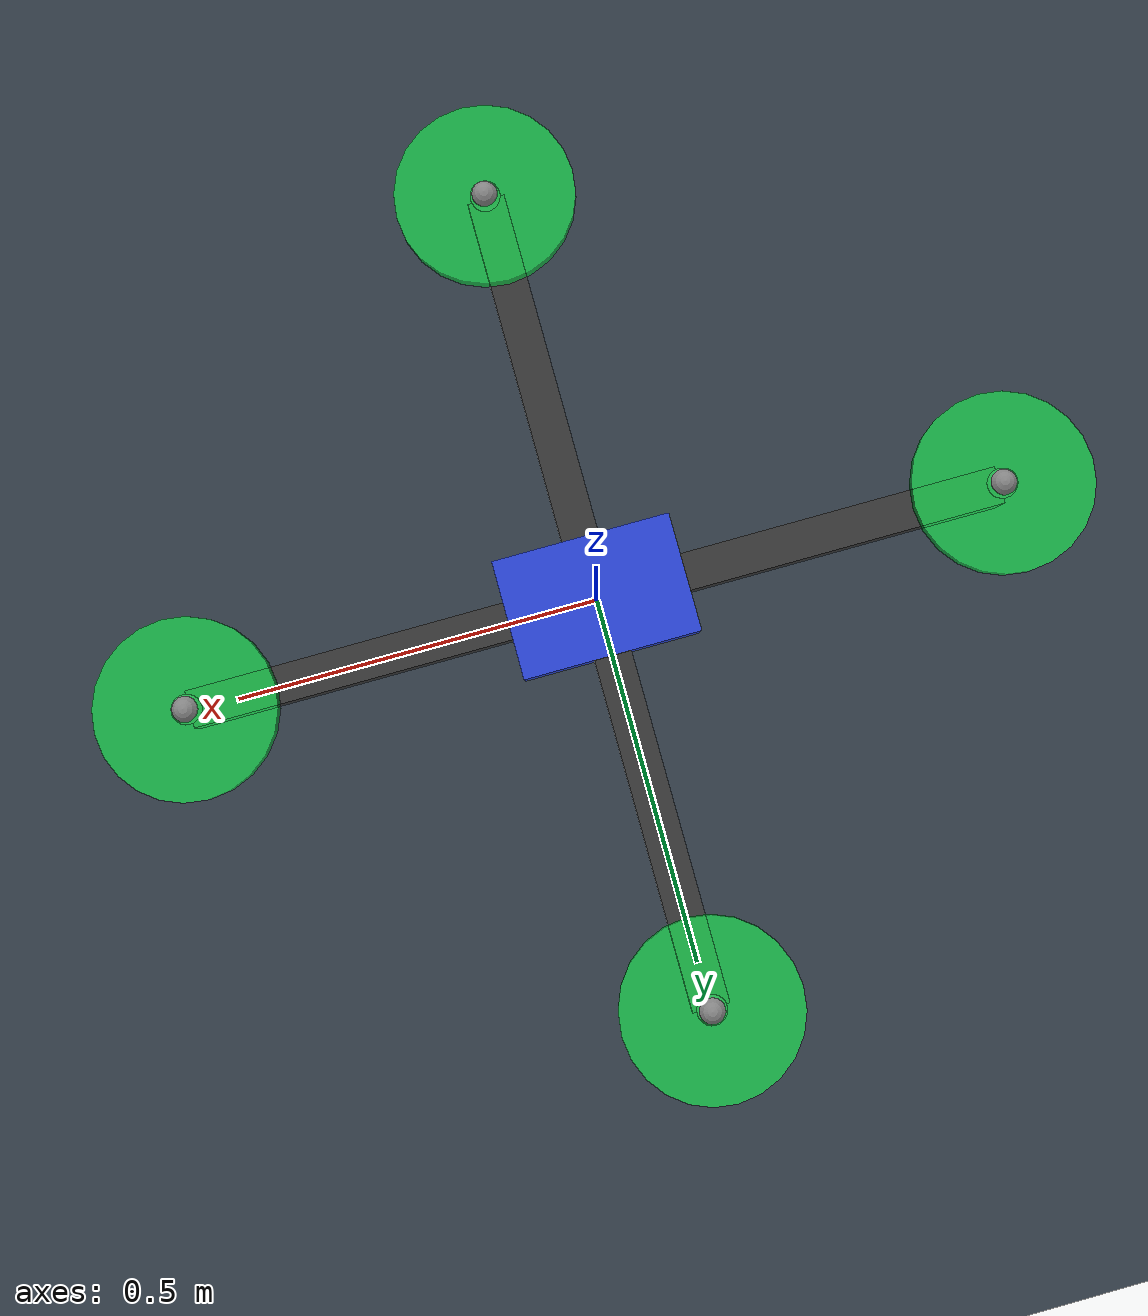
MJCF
<?xml version="1.0" encoding="UTF-8"?>

<mujoco model="quadrotor_scene">

    <!-- Load the actual quadrotor model -->

    <include file="quadrotor.xml"/>

    <visual>

        <headlight
            diffuse="0.8 0.8 0.8"
            ambient="0.3 0.3 0.3"
            specular="0.1 0.1 0.1"
        />

        <global
            azimuth="120"
            elevation="-20"
        />

    </visual>

    <asset>

        <!-- Sky -->

        <texture
            name="sky"
            type="skybox"
            builtin="gradient"
            rgb1="0.3 0.5 0.7"
            rgb2="0.05 0.05 0.05"
            width="512"
            height="3072"
        />

        <!-- Ground -->

        <texture
            name="ground"
            type="2d"
            builtin="checker"
            rgb1="0.25 0.3 0.35"
            rgb2="0.12 0.15 0.18"
            width="300"
            height="300"
        />

        <material
            name="ground_mat"
            texture="ground"
            texuniform="true"
            texrepeat="5 5"
            reflectance="0.2"
        />

    </asset>

    <worldbody>

        <!-- Light -->

        <light
            name="main_light"
            pos="0 0 3"
            dir="0 0 -1"
            directional="true"
        />

        <!-- Ground -->

        <geom
            name="floor"
            type="plane"
            size="5 5 0.1"
            material="ground_mat"
        />

    </worldbody>

</mujoco>

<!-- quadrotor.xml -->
<mujoco model="simple_quadrotor">

    <compiler angle="radian"/>

    <option
        timestep="0.01"
        gravity="0 0 -9.81"
    />

    <default>

        <joint
            damping="0.1"
            armature="0.01"
        />

        <geom
            friction="0.8 0.1 0.1"
        />

    </default>

    <asset>

        <material
            name="body_mat"
            rgba="0.15 0.25 0.8 1"
        />

        <material
            name="rod_mat"
            rgba="0.2 0.2 0.2 1"
        />

        <material
            name="rotor_mat"
            rgba="0.1 0.8 0.3 0.8"
        />

    </asset>

    <worldbody>

        <body
            name="quadrotor"
            pos="0 0 0.05"
        >

            <freejoint name="root"/>

            <!-- Central body -->
            <geom
                name="body"
                type="box"
                size="0.12 0.08 0.035"
                mass="0.5"
                material="body_mat"
            />

            <!-- X direction rod -->
            <geom
                name="rod_x"
                type="box"
                size="0.55 0.025 0.025"
                mass="0.08"
                material="rod_mat"
            />

            <!-- Y direction rod -->
            <geom
                name="rod_y"
                type="box"
                size="0.025 0.55 0.025"
                mass="0.08"
                material="rod_mat"
            />

            <!-- Rotor 1 -->
            <geom
                name="rotor1"
                type="cylinder"
                pos="0.55 0 0.04"
                size="0.12 0.01"
                mass="0.02"
                material="rotor_mat"
                contype="0"
                conaffinity="0"
            />

            <!-- Rotor 2 -->
            <geom
                name="rotor2"
                type="cylinder"
                pos="0 0.55 0.04"
                size="0.12 0.01"
                mass="0.02"
                material="rotor_mat"
                contype="0"
                conaffinity="0"
            />

            <!-- Rotor 3 -->
            <geom
                name="rotor3"
                type="cylinder"
                pos="-0.55 0 0.04"
                size="0.12 0.01"
                mass="0.02"
                material="rotor_mat"
                contype="0"
                conaffinity="0"
            />

            <!-- Rotor 4 -->
            <geom
                name="rotor4"
                type="cylinder"
                pos="0 -0.55 0.04"
                size="0.12 0.01"
                mass="0.02"
                material="rotor_mat"
                contype="0"
                conaffinity="0"
            />

            <!-- Motor thrust sites -->

            <site
                name="motor1"
                pos="0.55 0 0.04"
                size="0.02"
            />

            <site
                name="motor2"
                pos="0 0.55 0.04"
                size="0.02"
            />

            <site
                name="motor3"
                pos="-0.55 0 0.04"
                size="0.02"
            />

            <site
                name="motor4"
                pos="0 -0.55 0.04"
                size="0.02"
            />

        </body>

    </worldbody>

    <actuator>

        <motor
            name="thrust1"
            site="motor1"
            gear="0 0 1 0 0 0"
            ctrlrange="0 5"
            ctrllimited="true"
        />

        <motor
            name="thrust2"
            site="motor2"
            gear="0 0 1 0 0 0"
            ctrlrange="0 5"
            ctrllimited="true"
        />

        <motor
            name="thrust3"
            site="motor3"
            gear="0 0 1 0 0 0"
            ctrlrange="0 5"
            ctrllimited="true"
        />

        <motor
            name="thrust4"
            site="motor4"
            gear="0 0 1 0 0 0"
            ctrlrange="0 5"
            ctrllimited="true"
        />

    </actuator>

</mujoco>
